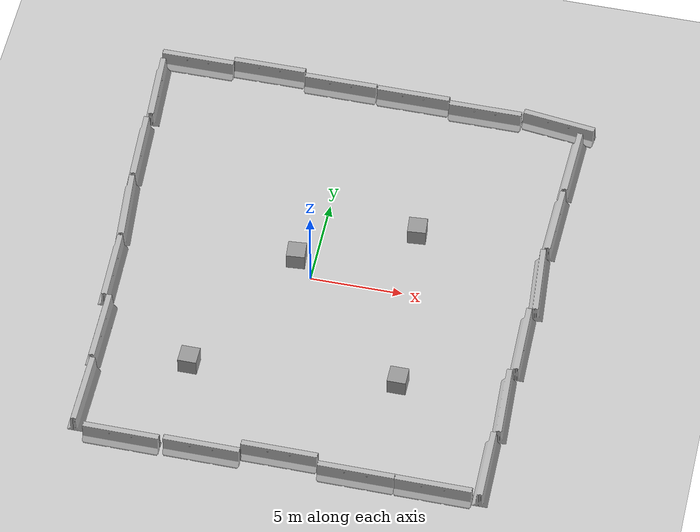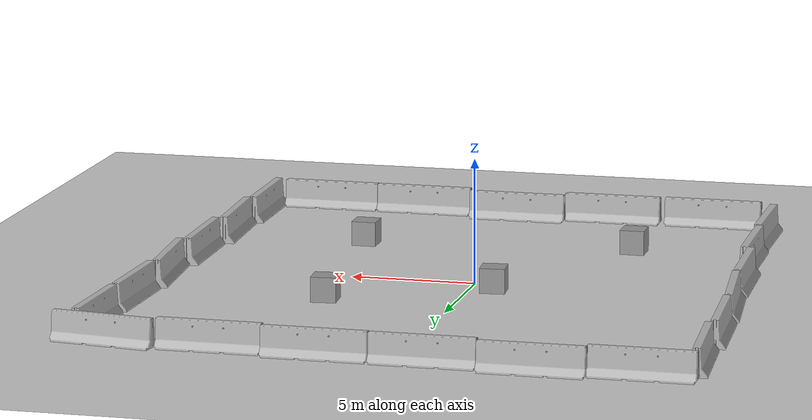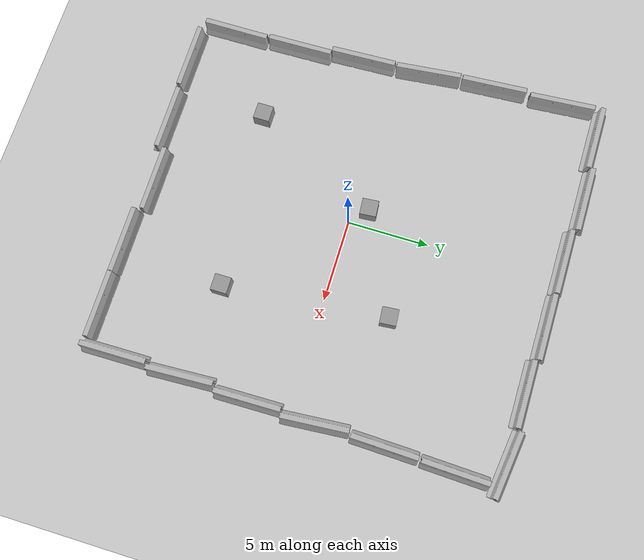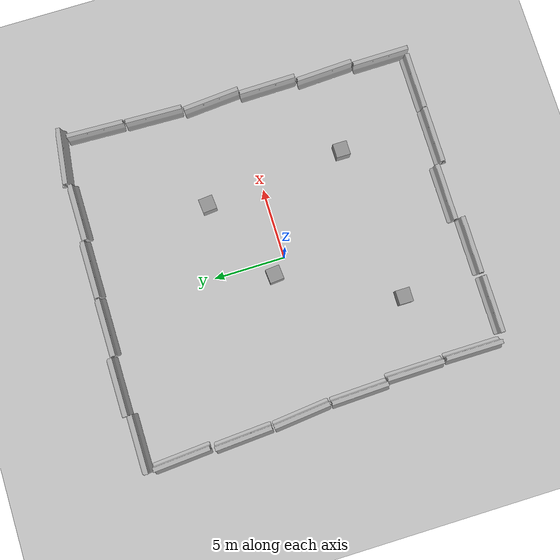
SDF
<sdf version="1.4">
 <world name="default">
  <light name="sun" type="directional">
   <pose>0 0 10 0 -0 0</pose>
   <diffuse>0.8 0.8 0.8 1</diffuse>
   <specular>0.2 0.2 0.2 1</specular>
   <attenuation>
    <range>1000</range>
    <constant>0.9</constant>
    <linear>0.01</linear>
    <quadratic>0.001</quadratic>
   </attenuation>
   <direction>-0.5 0.1 -0.9</direction>
  </light>
  <model name="ground_plane">
   <static>1</static>
   <link name="link">
    <collision name="collision">
     <geometry><plane><normal>0 0 1</normal><size>100 100</size></plane></geometry>
     <surface><friction><ode><mu>100</mu><mu2>50</mu2></ode></friction></surface>
    </collision>
    <visual name="visual">
     <cast_shadows>0</cast_shadows>
     <geometry><plane><normal>0 0 1</normal><size>100 100</size></plane></geometry>
     <material>
      <script><uri>file://media/materials/scripts/gazebo.material</uri><name>Gazebo/Grey</name></script>
     </material>
    </visual>
    <velocity_decay><linear>0</linear><angular>0</angular></velocity_decay>
   </link>
  </model>
  <physics type="ode">
   <max_step_size>0.001</max_step_size>
   <real_time_factor>1</real_time_factor>
   <real_time_update_rate>1000</real_time_update_rate>
   <gravity>0 0 -9.8</gravity>
  </physics>
  <scene><ambient>0.4 0.4 0.4 1</ambient><background>0.7 0.7 0.7 1</background><shadows>1</shadows></scene>
  <spherical_coordinates>
   <surface_model>EARTH_WGS84</surface_model>
   <latitude_deg>0</latitude_deg>
   <longitude_deg>0</longitude_deg>
   <elevation>0</elevation>
   <heading_deg>0</heading_deg>
  </spherical_coordinates>
  <model name="unit_box_1">
   <pose>5 4 0.5 0 -0 0.083754</pose>
   <link name="link">
    <inertial>
     <mass>1</mass>
     <inertia><ixx>1</ixx><ixy>0</ixy><ixz>0</ixz><iyy>1</iyy><iyz>0</iyz><izz>1</izz></inertia>
    </inertial>
    <collision name="collision"><geometry><box><size>1 1 1</size></box></geometry></collision>
    <visual name="visual">
     <geometry><box><size>1 1 1</size></box></geometry>
     <material>
      <script><uri>file://media/materials/scripts/gazebo.material</uri><name>Gazebo/Grey</name></script>
     </material>
    </visual>
    <velocity_decay><linear>0</linear><angular>0</angular></velocity_decay>
   </link>
   <static>0</static>
  </model>
  <model name="unit_box_2">
   <pose>-5 -7 0.5 0 -0 0</pose>
   <link name="link">
    <inertial>
     <mass>1</mass>
     <inertia><ixx>1</ixx><ixy>0</ixy><ixz>0</ixz><iyy>1</iyy><iyz>0</iyz><izz>1</izz></inertia>
    </inertial>
    <collision name="collision"><geometry><box><size>1 1 1</size></box></geometry></collision>
    <visual name="visual">
     <geometry><box><size>1 1 1</size></box></geometry>
     <material>
      <script><uri>file://media/materials/scripts/gazebo.material</uri><name>Gazebo/Grey</name></script>
     </material>
    </visual>
    <velocity_decay><linear>0</linear><angular>0</angular></velocity_decay>
   </link>
   <static>0</static>
  </model>
  <model name="unit_box_3">
   <pose>-1 1 0.5 0 -0 0.083754</pose>
   <link name="link">
    <inertial>
     <mass>1</mass>
     <inertia><ixx>1</ixx><ixy>0</ixy><ixz>0</ixz><iyy>1</iyy><iyz>0</iyz><izz>1</izz></inertia>
    </inertial>
    <collision name="collision"><geometry><box><size>1 1 1</size></box></geometry></collision>
    <visual name="visual">
     <geometry><box><size>1 1 1</size></box></geometry>
     <material>
      <script><uri>file://media/materials/scripts/gazebo.material</uri><name>Gazebo/Grey</name></script>
     </material>
    </visual>
    <velocity_decay><linear>0</linear><angular>0</angular></velocity_decay>
   </link>
   <static>0</static>
  </model>
  <model name="unit_box_4">
   <pose>6 -6 0.5 0 -0 0</pose>
   <link name="link">
    <inertial>
     <mass>1</mass>
     <inertia><ixx>1</ixx><ixy>0</ixy><ixz>0</ixz><iyy>1</iyy><iyz>0</iyz><izz>1</izz></inertia>
    </inertial>
    <collision name="collision"><geometry><box><size>1 1 1</size></box></geometry></collision>
    <visual name="visual">
     <geometry><box><size>1 1 1</size></box></geometry>
     <material>
      <script><uri>file://media/materials/scripts/gazebo.material</uri><name>Gazebo/Grey</name></script>
     </material>
    </visual>
    <velocity_decay><linear>0</linear><angular>0</angular></velocity_decay>
   </link>
   <static>0</static>
  </model>
  <model name="jersey_barrier">
   <static>1</static>
   <link name="link">
    <visual name="visual">
     <geometry><mesh><uri>model://jersey_barrier/meshes/jersey_barrier.dae</uri></mesh></geometry>
    </visual>
    <collision name="upright">
     <pose>0 0 0.5715 0 -0 0</pose>
     <geometry><box><size>4.06542 0.3063 1.143</size></box></geometry>
    </collision>
    <collision name="base">
     <pose>0 0 0.032258 0 -0 0</pose>
     <geometry><box><size>4.06542 0.8107 0.064516</size></box></geometry>
    </collision>
    <collision name="base2">
     <pose>0 0 0.1 0 -0 0</pose>
     <geometry><box><size>4.06542 0.65 0.1</size></box></geometry>
    </collision>
    <collision name="base3">
     <pose>0 0 0.2 0 -0 0</pose>
     <geometry><box><size>4.06542 0.5 0.1</size></box></geometry>
    </collision>
    <collision name="left-angle">
     <pose>0 -0.224 0.2401 0.9 -0 0</pose>
     <geometry><box><size>4.06542 0.5 0.064516</size></box></geometry>
    </collision>
    <collision name="right-angle">
     <pose>0 0.224 0.2401 -0.9 0 0</pose>
     <geometry><box><size>4.06542 0.5 0.064516</size></box></geometry>
    </collision>
    <velocity_decay><linear>0</linear><angular>0</angular></velocity_decay>
   </link>
   <pose>-7.26215 -12.5985 0 0 -0 0</pose>
  </model>
  <model name="jersey_barrier_0">
   <static>1</static>
   <link name="link">
    <visual name="visual">
     <geometry><mesh><uri>model://jersey_barrier/meshes/jersey_barrier.dae</uri></mesh></geometry>
    </visual>
    <collision name="upright">
     <pose>0 0 0.5715 0 -0 0</pose>
     <geometry><box><size>4.06542 0.3063 1.143</size></box></geometry>
    </collision>
    <collision name="base">
     <pose>0 0 0.032258 0 -0 0</pose>
     <geometry><box><size>4.06542 0.8107 0.064516</size></box></geometry>
    </collision>
    <collision name="base2">
     <pose>0 0 0.1 0 -0 0</pose>
     <geometry><box><size>4.06542 0.65 0.1</size></box></geometry>
    </collision>
    <collision name="base3">
     <pose>0 0 0.2 0 -0 0</pose>
     <geometry><box><size>4.06542 0.5 0.1</size></box></geometry>
    </collision>
    <collision name="left-angle">
     <pose>0 -0.224 0.2401 0.9 -0 0</pose>
     <geometry><box><size>4.06542 0.5 0.064516</size></box></geometry>
    </collision>
    <collision name="right-angle">
     <pose>0 0.224 0.2401 -0.9 0 0</pose>
     <geometry><box><size>4.06542 0.5 0.064516</size></box></geometry>
    </collision>
    <velocity_decay><linear>0</linear><angular>0</angular></velocity_decay>
   </link>
   <pose>-3 -12.5184 0 0 -0 0</pose>
  </model>
  <model name="jersey_barrier_1">
   <static>1</static>
   <link name="link">
    <visual name="visual">
     <geometry><mesh><uri>model://jersey_barrier/meshes/jersey_barrier.dae</uri></mesh></geometry>
    </visual>
    <collision name="upright">
     <pose>0 0 0.5715 0 -0 0</pose>
     <geometry><box><size>4.06542 0.3063 1.143</size></box></geometry>
    </collision>
    <collision name="base">
     <pose>0 0 0.032258 0 -0 0</pose>
     <geometry><box><size>4.06542 0.8107 0.064516</size></box></geometry>
    </collision>
    <collision name="base2">
     <pose>0 0 0.1 0 -0 0</pose>
     <geometry><box><size>4.06542 0.65 0.1</size></box></geometry>
    </collision>
    <collision name="base3">
     <pose>0 0 0.2 0 -0 0</pose>
     <geometry><box><size>4.06542 0.5 0.1</size></box></geometry>
    </collision>
    <collision name="left-angle">
     <pose>0 -0.224 0.2401 0.9 -0 0</pose>
     <geometry><box><size>4.06542 0.5 0.064516</size></box></geometry>
    </collision>
    <collision name="right-angle">
     <pose>0 0.224 0.2401 -0.9 0 0</pose>
     <geometry><box><size>4.06542 0.5 0.064516</size></box></geometry>
    </collision>
    <velocity_decay><linear>0</linear><angular>0</angular></velocity_decay>
   </link>
   <pose>1 -12 0 0 -0 0</pose>
  </model>
  <model name="jersey_barrier_2">
   <static>1</static>
   <link name="link">
    <visual name="visual">
     <geometry><mesh><uri>model://jersey_barrier/meshes/jersey_barrier.dae</uri></mesh></geometry>
    </visual>
    <collision name="upright">
     <pose>0 0 0.5715 0 -0 0</pose>
     <geometry><box><size>4.06542 0.3063 1.143</size></box></geometry>
    </collision>
    <collision name="base">
     <pose>0 0 0.032258 0 -0 0</pose>
     <geometry><box><size>4.06542 0.8107 0.064516</size></box></geometry>
    </collision>
    <collision name="base2">
     <pose>0 0 0.1 0 -0 0</pose>
     <geometry><box><size>4.06542 0.65 0.1</size></box></geometry>
    </collision>
    <collision name="base3">
     <pose>0 0 0.2 0 -0 0</pose>
     <geometry><box><size>4.06542 0.5 0.1</size></box></geometry>
    </collision>
    <collision name="left-angle">
     <pose>0 -0.224 0.2401 0.9 -0 0</pose>
     <geometry><box><size>4.06542 0.5 0.064516</size></box></geometry>
    </collision>
    <collision name="right-angle">
     <pose>0 0.224 0.2401 -0.9 0 0</pose>
     <geometry><box><size>4.06542 0.5 0.064516</size></box></geometry>
    </collision>
    <velocity_decay><linear>0</linear><angular>0</angular></velocity_decay>
   </link>
   <pose>5.13642 -12.451 0 0 -0 0</pose>
  </model>
  <model name="jersey_barrier_3">
   <static>1</static>
   <link name="link">
    <visual name="visual">
     <geometry><mesh><uri>model://jersey_barrier/meshes/jersey_barrier.dae</uri></mesh></geometry>
    </visual>
    <collision name="upright">
     <pose>0 0 0.5715 0 -0 0</pose>
     <geometry><box><size>4.06542 0.3063 1.143</size></box></geometry>
    </collision>
    <collision name="base">
     <pose>0 0 0.032258 0 -0 0</pose>
     <geometry><box><size>4.06542 0.8107 0.064516</size></box></geometry>
    </collision>
    <collision name="base2">
     <pose>0 0 0.1 0 -0 0</pose>
     <geometry><box><size>4.06542 0.65 0.1</size></box></geometry>
    </collision>
    <collision name="base3">
     <pose>0 0 0.2 0 -0 0</pose>
     <geometry><box><size>4.06542 0.5 0.1</size></box></geometry>
    </collision>
    <collision name="left-angle">
     <pose>0 -0.224 0.2401 0.9 -0 0</pose>
     <geometry><box><size>4.06542 0.5 0.064516</size></box></geometry>
    </collision>
    <collision name="right-angle">
     <pose>0 0.224 0.2401 -0.9 0 0</pose>
     <geometry><box><size>4.06542 0.5 0.064516</size></box></geometry>
    </collision>
    <velocity_decay><linear>0</linear><angular>0</angular></velocity_decay>
   </link>
   <pose>9.19104 -12.4604 0 0 -0 0</pose>
  </model>
  <model name="jersey_barrier_4">
   <static>1</static>
   <link name="link">
    <visual name="visual">
     <geometry><mesh><uri>model://jersey_barrier/meshes/jersey_barrier.dae</uri></mesh></geometry>
    </visual>
    <collision name="upright">
     <pose>0 0 0.5715 0 -0 0</pose>
     <geometry><box><size>4.06542 0.3063 1.143</size></box></geometry>
    </collision>
    <collision name="base">
     <pose>0 0 0.032258 0 -0 0</pose>
     <geometry><box><size>4.06542 0.8107 0.064516</size></box></geometry>
    </collision>
    <collision name="base2">
     <pose>0 0 0.1 0 -0 0</pose>
     <geometry><box><size>4.06542 0.65 0.1</size></box></geometry>
    </collision>
    <collision name="base3">
     <pose>0 0 0.2 0 -0 0</pose>
     <geometry><box><size>4.06542 0.5 0.1</size></box></geometry>
    </collision>
    <collision name="left-angle">
     <pose>0 -0.224 0.2401 0.9 -0 0</pose>
     <geometry><box><size>4.06542 0.5 0.064516</size></box></geometry>
    </collision>
    <collision name="right-angle">
     <pose>0 0.224 0.2401 -0.9 0 0</pose>
     <geometry><box><size>4.06542 0.5 0.064516</size></box></geometry>
    </collision>
    <velocity_decay><linear>0</linear><angular>0</angular></velocity_decay>
   </link>
   <pose>11.6163 -10.6377 0 0 -0 1.58161</pose>
  </model>
  <model name="jersey_barrier_5">
   <static>1</static>
   <link name="link">
    <visual name="visual">
     <geometry><mesh><uri>model://jersey_barrier/meshes/jersey_barrier.dae</uri></mesh></geometry>
    </visual>
    <collision name="upright">
     <pose>0 0 0.5715 0 -0 0</pose>
     <geometry><box><size>4.06542 0.3063 1.143</size></box></geometry>
    </collision>
    <collision name="base">
     <pose>0 0 0.032258 0 -0 0</pose>
     <geometry><box><size>4.06542 0.8107 0.064516</size></box></geometry>
    </collision>
    <collision name="base2">
     <pose>0 0 0.1 0 -0 0</pose>
     <geometry><box><size>4.06542 0.65 0.1</size></box></geometry>
    </collision>
    <collision name="base3">
     <pose>0 0 0.2 0 -0 0</pose>
     <geometry><box><size>4.06542 0.5 0.1</size></box></geometry>
    </collision>
    <collision name="left-angle">
     <pose>0 -0.224 0.2401 0.9 -0 0</pose>
     <geometry><box><size>4.06542 0.5 0.064516</size></box></geometry>
    </collision>
    <collision name="right-angle">
     <pose>0 0.224 0.2401 -0.9 0 0</pose>
     <geometry><box><size>4.06542 0.5 0.064516</size></box></geometry>
    </collision>
    <velocity_decay><linear>0</linear><angular>0</angular></velocity_decay>
   </link>
   <pose>-9.25889 13.0001 0 0 -0 0</pose>
  </model>
  <model name="jersey_barrier_6">
   <static>1</static>
   <link name="link">
    <visual name="visual">
     <geometry><mesh><uri>model://jersey_barrier/meshes/jersey_barrier.dae</uri></mesh></geometry>
    </visual>
    <collision name="upright">
     <pose>0 0 0.5715 0 -0 0</pose>
     <geometry><box><size>4.06542 0.3063 1.143</size></box></geometry>
    </collision>
    <collision name="base">
     <pose>0 0 0.032258 0 -0 0</pose>
     <geometry><box><size>4.06542 0.8107 0.064516</size></box></geometry>
    </collision>
    <collision name="base2">
     <pose>0 0 0.1 0 -0 0</pose>
     <geometry><box><size>4.06542 0.65 0.1</size></box></geometry>
    </collision>
    <collision name="base3">
     <pose>0 0 0.2 0 -0 0</pose>
     <geometry><box><size>4.06542 0.5 0.1</size></box></geometry>
    </collision>
    <collision name="left-angle">
     <pose>0 -0.224 0.2401 0.9 -0 0</pose>
     <geometry><box><size>4.06542 0.5 0.064516</size></box></geometry>
    </collision>
    <collision name="right-angle">
     <pose>0 0.224 0.2401 -0.9 0 0</pose>
     <geometry><box><size>4.06542 0.5 0.064516</size></box></geometry>
    </collision>
    <velocity_decay><linear>0</linear><angular>0</angular></velocity_decay>
   </link>
   <pose>-5.24766 13.2823 0 0 -0 0</pose>
  </model>
  <model name="jersey_barrier_7">
   <static>1</static>
   <link name="link">
    <visual name="visual">
     <geometry><mesh><uri>model://jersey_barrier/meshes/jersey_barrier.dae</uri></mesh></geometry>
    </visual>
    <collision name="upright">
     <pose>0 0 0.5715 0 -0 0</pose>
     <geometry><box><size>4.06542 0.3063 1.143</size></box></geometry>
    </collision>
    <collision name="base">
     <pose>0 0 0.032258 0 -0 0</pose>
     <geometry><box><size>4.06542 0.8107 0.064516</size></box></geometry>
    </collision>
    <collision name="base2">
     <pose>0 0 0.1 0 -0 0</pose>
     <geometry><box><size>4.06542 0.65 0.1</size></box></geometry>
    </collision>
    <collision name="base3">
     <pose>0 0 0.2 0 -0 0</pose>
     <geometry><box><size>4.06542 0.5 0.1</size></box></geometry>
    </collision>
    <collision name="left-angle">
     <pose>0 -0.224 0.2401 0.9 -0 0</pose>
     <geometry><box><size>4.06542 0.5 0.064516</size></box></geometry>
    </collision>
    <collision name="right-angle">
     <pose>0 0.224 0.2401 -0.9 0 0</pose>
     <geometry><box><size>4.06542 0.5 0.064516</size></box></geometry>
    </collision>
    <velocity_decay><linear>0</linear><angular>0</angular></velocity_decay>
   </link>
   <pose>-1.1439 12.9956 0 0 -0 0</pose>
  </model>
  <model name="jersey_barrier_8">
   <static>1</static>
   <link name="link">
    <visual name="visual">
     <geometry><mesh><uri>model://jersey_barrier/meshes/jersey_barrier.dae</uri></mesh></geometry>
    </visual>
    <collision name="upright">
     <pose>0 0 0.5715 0 -0 0</pose>
     <geometry><box><size>4.06542 0.3063 1.143</size></box></geometry>
    </collision>
    <collision name="base">
     <pose>0 0 0.032258 0 -0 0</pose>
     <geometry><box><size>4.06542 0.8107 0.064516</size></box></geometry>
    </collision>
    <collision name="base2">
     <pose>0 0 0.1 0 -0 0</pose>
     <geometry><box><size>4.06542 0.65 0.1</size></box></geometry>
    </collision>
    <collision name="base3">
     <pose>0 0 0.2 0 -0 0</pose>
     <geometry><box><size>4.06542 0.5 0.1</size></box></geometry>
    </collision>
    <collision name="left-angle">
     <pose>0 -0.224 0.2401 0.9 -0 0</pose>
     <geometry><box><size>4.06542 0.5 0.064516</size></box></geometry>
    </collision>
    <collision name="right-angle">
     <pose>0 0.224 0.2401 -0.9 0 0</pose>
     <geometry><box><size>4.06542 0.5 0.064516</size></box></geometry>
    </collision>
    <velocity_decay><linear>0</linear><angular>0</angular></velocity_decay>
   </link>
   <pose>2.95316 12.9508 0 0 -0 0</pose>
  </model>
  <model name="jersey_barrier_9">
   <static>1</static>
   <link name="link">
    <visual name="visual">
     <geometry><mesh><uri>model://jersey_barrier/meshes/jersey_barrier.dae</uri></mesh></geometry>
    </visual>
    <collision name="upright">
     <pose>0 0 0.5715 0 -0 0</pose>
     <geometry><box><size>4.06542 0.3063 1.143</size></box></geometry>
    </collision>
    <collision name="base">
     <pose>0 0 0.032258 0 -0 0</pose>
     <geometry><box><size>4.06542 0.8107 0.064516</size></box></geometry>
    </collision>
    <collision name="base2">
     <pose>0 0 0.1 0 -0 0</pose>
     <geometry><box><size>4.06542 0.65 0.1</size></box></geometry>
    </collision>
    <collision name="base3">
     <pose>0 0 0.2 0 -0 0</pose>
     <geometry><box><size>4.06542 0.5 0.1</size></box></geometry>
    </collision>
    <collision name="left-angle">
     <pose>0 -0.224 0.2401 0.9 -0 0</pose>
     <geometry><box><size>4.06542 0.5 0.064516</size></box></geometry>
    </collision>
    <collision name="right-angle">
     <pose>0 0.224 0.2401 -0.9 0 0</pose>
     <geometry><box><size>4.06542 0.5 0.064516</size></box></geometry>
    </collision>
    <velocity_decay><linear>0</linear><angular>0</angular></velocity_decay>
   </link>
   <pose>7.0396 12.7183 0 0 -0 0</pose>
  </model>
  <model name="jersey_barrier_10">
   <static>1</static>
   <link name="link">
    <visual name="visual">
     <geometry><mesh><uri>model://jersey_barrier/meshes/jersey_barrier.dae</uri></mesh></geometry>
    </visual>
    <collision name="upright">
     <pose>0 0 0.5715 0 -0 0</pose>
     <geometry><box><size>4.06542 0.3063 1.143</size></box></geometry>
    </collision>
    <collision name="base">
     <pose>0 0 0.032258 0 -0 0</pose>
     <geometry><box><size>4.06542 0.8107 0.064516</size></box></geometry>
    </collision>
    <collision name="base2">
     <pose>0 0 0.1 0 -0 0</pose>
     <geometry><box><size>4.06542 0.65 0.1</size></box></geometry>
    </collision>
    <collision name="base3">
     <pose>0 0 0.2 0 -0 0</pose>
     <geometry><box><size>4.06542 0.5 0.1</size></box></geometry>
    </collision>
    <collision name="left-angle">
     <pose>0 -0.224 0.2401 0.9 -0 0</pose>
     <geometry><box><size>4.06542 0.5 0.064516</size></box></geometry>
    </collision>
    <collision name="right-angle">
     <pose>0 0.224 0.2401 -0.9 0 0</pose>
     <geometry><box><size>4.06542 0.5 0.064516</size></box></geometry>
    </collision>
    <velocity_decay><linear>0</linear><angular>0</angular></velocity_decay>
   </link>
   <pose>11.167 12.7238 0 0 0 -0.129577</pose>
  </model>
  <model name="jersey_barrier_11">
   <static>1</static>
   <link name="link">
    <visual name="visual">
     <geometry><mesh><uri>model://jersey_barrier/meshes/jersey_barrier.dae</uri></mesh></geometry>
    </visual>
    <collision name="upright">
     <pose>0 0 0.5715 0 -0 0</pose>
     <geometry><box><size>4.06542 0.3063 1.143</size></box></geometry>
    </collision>
    <collision name="base">
     <pose>0 0 0.032258 0 -0 0</pose>
     <geometry><box><size>4.06542 0.8107 0.064516</size></box></geometry>
    </collision>
    <collision name="base2">
     <pose>0 0 0.1 0 -0 0</pose>
     <geometry><box><size>4.06542 0.65 0.1</size></box></geometry>
    </collision>
    <collision name="base3">
     <pose>0 0 0.2 0 -0 0</pose>
     <geometry><box><size>4.06542 0.5 0.1</size></box></geometry>
    </collision>
    <collision name="left-angle">
     <pose>0 -0.224 0.2401 0.9 -0 0</pose>
     <geometry><box><size>4.06542 0.5 0.064516</size></box></geometry>
    </collision>
    <collision name="right-angle">
     <pose>0 0.224 0.2401 -0.9 0 0</pose>
     <geometry><box><size>4.06542 0.5 0.064516</size></box></geometry>
    </collision>
    <velocity_decay><linear>0</linear><angular>0</angular></velocity_decay>
   </link>
   <pose>12.194 5.8304 0 0 -0 1.54369</pose>
  </model>
  <model name="jersey_barrier_12">
   <static>1</static>
   <link name="link">
    <visual name="visual">
     <geometry><mesh><uri>model://jersey_barrier/meshes/jersey_barrier.dae</uri></mesh></geometry>
    </visual>
    <collision name="upright">
     <pose>0 0 0.5715 0 -0 0</pose>
     <geometry><box><size>4.06542 0.3063 1.143</size></box></geometry>
    </collision>
    <collision name="base">
     <pose>0 0 0.032258 0 -0 0</pose>
     <geometry><box><size>4.06542 0.8107 0.064516</size></box></geometry>
    </collision>
    <collision name="base2">
     <pose>0 0 0.1 0 -0 0</pose>
     <geometry><box><size>4.06542 0.65 0.1</size></box></geometry>
    </collision>
    <collision name="base3">
     <pose>0 0 0.2 0 -0 0</pose>
     <geometry><box><size>4.06542 0.5 0.1</size></box></geometry>
    </collision>
    <collision name="left-angle">
     <pose>0 -0.224 0.2401 0.9 -0 0</pose>
     <geometry><box><size>4.06542 0.5 0.064516</size></box></geometry>
    </collision>
    <collision name="right-angle">
     <pose>0 0.224 0.2401 -0.9 0 0</pose>
     <geometry><box><size>4.06542 0.5 0.064516</size></box></geometry>
    </collision>
    <velocity_decay><linear>0</linear><angular>0</angular></velocity_decay>
   </link>
   <pose>12.0907 1.67887 0 0 -0 1.64825</pose>
  </model>
  <model name="jersey_barrier_13">
   <static>1</static>
   <link name="link">
    <visual name="visual">
     <geometry><mesh><uri>model://jersey_barrier/meshes/jersey_barrier.dae</uri></mesh></geometry>
    </visual>
    <collision name="upright">
     <pose>0 0 0.5715 0 -0 0</pose>
     <geometry><box><size>4.06542 0.3063 1.143</size></box></geometry>
    </collision>
    <collision name="base">
     <pose>0 0 0.032258 0 -0 0</pose>
     <geometry><box><size>4.06542 0.8107 0.064516</size></box></geometry>
    </collision>
    <collision name="base2">
     <pose>0 0 0.1 0 -0 0</pose>
     <geometry><box><size>4.06542 0.65 0.1</size></box></geometry>
    </collision>
    <collision name="base3">
     <pose>0 0 0.2 0 -0 0</pose>
     <geometry><box><size>4.06542 0.5 0.1</size></box></geometry>
    </collision>
    <collision name="left-angle">
     <pose>0 -0.224 0.2401 0.9 -0 0</pose>
     <geometry><box><size>4.06542 0.5 0.064516</size></box></geometry>
    </collision>
    <collision name="right-angle">
     <pose>0 0.224 0.2401 -0.9 0 0</pose>
     <geometry><box><size>4.06542 0.5 0.064516</size></box></geometry>
    </collision>
    <velocity_decay><linear>0</linear><angular>0</angular></velocity_decay>
   </link>
   <pose>11.9521 -2.38624 0 0 -0 1.58545</pose>
  </model>
  <model name="jersey_barrier_14">
   <static>1</static>
   <link name="link">
    <visual name="visual">
     <geometry><mesh><uri>model://jersey_barrier/meshes/jersey_barrier.dae</uri></mesh></geometry>
    </visual>
    <collision name="upright">
     <pose>0 0 0.5715 0 -0 0</pose>
     <geometry><box><size>4.06542 0.3063 1.143</size></box></geometry>
    </collision>
    <collision name="base">
     <pose>0 0 0.032258 0 -0 0</pose>
     <geometry><box><size>4.06542 0.8107 0.064516</size></box></geometry>
    </collision>
    <collision name="base2">
     <pose>0 0 0.1 0 -0 0</pose>
     <geometry><box><size>4.06542 0.65 0.1</size></box></geometry>
    </collision>
    <collision name="base3">
     <pose>0 0 0.2 0 -0 0</pose>
     <geometry><box><size>4.06542 0.5 0.1</size></box></geometry>
    </collision>
    <collision name="left-angle">
     <pose>0 -0.224 0.2401 0.9 -0 0</pose>
     <geometry><box><size>4.06542 0.5 0.064516</size></box></geometry>
    </collision>
    <collision name="right-angle">
     <pose>0 0.224 0.2401 -0.9 0 0</pose>
     <geometry><box><size>4.06542 0.5 0.064516</size></box></geometry>
    </collision>
    <velocity_decay><linear>0</linear><angular>0</angular></velocity_decay>
   </link>
   <pose>11.7484 -6.5369 0 0 -0 1.61742</pose>
  </model>
  <model name="jersey_barrier_15">
   <static>1</static>
   <link name="link">
    <visual name="visual">
     <geometry><mesh><uri>model://jersey_barrier/meshes/jersey_barrier.dae</uri></mesh></geometry>
    </visual>
    <collision name="upright">
     <pose>0 0 0.5715 0 -0 0</pose>
     <geometry><box><size>4.06542 0.3063 1.143</size></box></geometry>
    </collision>
    <collision name="base">
     <pose>0 0 0.032258 0 -0 0</pose>
     <geometry><box><size>4.06542 0.8107 0.064516</size></box></geometry>
    </collision>
    <collision name="base2">
     <pose>0 0 0.1 0 -0 0</pose>
     <geometry><box><size>4.06542 0.65 0.1</size></box></geometry>
    </collision>
    <collision name="base3">
     <pose>0 0 0.2 0 -0 0</pose>
     <geometry><box><size>4.06542 0.5 0.1</size></box></geometry>
    </collision>
    <collision name="left-angle">
     <pose>0 -0.224 0.2401 0.9 -0 0</pose>
     <geometry><box><size>4.06542 0.5 0.064516</size></box></geometry>
    </collision>
    <collision name="right-angle">
     <pose>0 0.224 0.2401 -0.9 0 0</pose>
     <geometry><box><size>4.06542 0.5 0.064516</size></box></geometry>
    </collision>
    <velocity_decay><linear>0</linear><angular>0</angular></velocity_decay>
   </link>
   <pose>-10.907 6.17584 0 0 -0 1.63254</pose>
  </model>
  <model name="jersey_barrier_16">
   <static>1</static>
   <link name="link">
    <visual name="visual">
     <geometry><mesh><uri>model://jersey_barrier/meshes/jersey_barrier.dae</uri></mesh></geometry>
    </visual>
    <collision name="upright">
     <pose>0 0 0.5715 0 -0 0</pose>
     <geometry><box><size>4.06542 0.3063 1.143</size></box></geometry>
    </collision>
    <collision name="base">
     <pose>0 0 0.032258 0 -0 0</pose>
     <geometry><box><size>4.06542 0.8107 0.064516</size></box></geometry>
    </collision>
    <collision name="base2">
     <pose>0 0 0.1 0 -0 0</pose>
     <geometry><box><size>4.06542 0.65 0.1</size></box></geometry>
    </collision>
    <collision name="base3">
     <pose>0 0 0.2 0 -0 0</pose>
     <geometry><box><size>4.06542 0.5 0.1</size></box></geometry>
    </collision>
    <collision name="left-angle">
     <pose>0 -0.224 0.2401 0.9 -0 0</pose>
     <geometry><box><size>4.06542 0.5 0.064516</size></box></geometry>
    </collision>
    <collision name="right-angle">
     <pose>0 0.224 0.2401 -0.9 0 0</pose>
     <geometry><box><size>4.06542 0.5 0.064516</size></box></geometry>
    </collision>
    <velocity_decay><linear>0</linear><angular>0</angular></velocity_decay>
   </link>
   <pose>-10.6126 2.01572 0 0 -0 1.67324</pose>
  </model>
  <model name="jersey_barrier_17">
   <static>1</static>
   <link name="link">
    <visual name="visual">
     <geometry><mesh><uri>model://jersey_barrier/meshes/jersey_barrier.dae</uri></mesh></geometry>
    </visual>
    <collision name="upright">
     <pose>0 0 0.5715 0 -0 0</pose>
     <geometry><box><size>4.06542 0.3063 1.143</size></box></geometry>
    </collision>
    <collision name="base">
     <pose>0 0 0.032258 0 -0 0</pose>
     <geometry><box><size>4.06542 0.8107 0.064516</size></box></geometry>
    </collision>
    <collision name="base2">
     <pose>0 0 0.1 0 -0 0</pose>
     <geometry><box><size>4.06542 0.65 0.1</size></box></geometry>
    </collision>
    <collision name="base3">
     <pose>0 0 0.2 0 -0 0</pose>
     <geometry><box><size>4.06542 0.5 0.1</size></box></geometry>
    </collision>
    <collision name="left-angle">
     <pose>0 -0.224 0.2401 0.9 -0 0</pose>
     <geometry><box><size>4.06542 0.5 0.064516</size></box></geometry>
    </collision>
    <collision name="right-angle">
     <pose>0 0.224 0.2401 -0.9 0 0</pose>
     <geometry><box><size>4.06542 0.5 0.064516</size></box></geometry>
    </collision>
    <velocity_decay><linear>0</linear><angular>0</angular></velocity_decay>
   </link>
   <pose>-10.3644 -2.14271 0 0 -0 1.60702</pose>
  </model>
  <model name="jersey_barrier_18">
   <static>1</static>
   <link name="link">
    <visual name="visual">
     <geometry><mesh><uri>model://jersey_barrier/meshes/jersey_barrier.dae</uri></mesh></geometry>
    </visual>
    <collision name="upright">
     <pose>0 0 0.5715 0 -0 0</pose>
     <geometry><box><size>4.06542 0.3063 1.143</size></box></geometry>
    </collision>
    <collision name="base">
     <pose>0 0 0.032258 0 -0 0</pose>
     <geometry><box><size>4.06542 0.8107 0.064516</size></box></geometry>
    </collision>
    <collision name="base2">
     <pose>0 0 0.1 0 -0 0</pose>
     <geometry><box><size>4.06542 0.65 0.1</size></box></geometry>
    </collision>
    <collision name="base3">
     <pose>0 0 0.2 0 -0 0</pose>
     <geometry><box><size>4.06542 0.5 0.1</size></box></geometry>
    </collision>
    <collision name="left-angle">
     <pose>0 -0.224 0.2401 0.9 -0 0</pose>
     <geometry><box><size>4.06542 0.5 0.064516</size></box></geometry>
    </collision>
    <collision name="right-angle">
     <pose>0 0.224 0.2401 -0.9 0 0</pose>
     <geometry><box><size>4.06542 0.5 0.064516</size></box></geometry>
    </collision>
    <velocity_decay><linear>0</linear><angular>0</angular></velocity_decay>
   </link>
   <pose>-9.98265 -6.18571 0 0 -0 1.58701</pose>
  </model>
  <model name="jersey_barrier_19">
   <static>1</static>
   <link name="link">
    <visual name="visual">
     <geometry><mesh><uri>model://jersey_barrier/meshes/jersey_barrier.dae</uri></mesh></geometry>
    </visual>
    <collision name="upright">
     <pose>0 0 0.5715 0 -0 0</pose>
     <geometry><box><size>4.06542 0.3063 1.143</size></box></geometry>
    </collision>
    <collision name="base">
     <pose>0 0 0.032258 0 -0 0</pose>
     <geometry><box><size>4.06542 0.8107 0.064516</size></box></geometry>
    </collision>
    <collision name="base2">
     <pose>0 0 0.1 0 -0 0</pose>
     <geometry><box><size>4.06542 0.65 0.1</size></box></geometry>
    </collision>
    <collision name="base3">
     <pose>0 0 0.2 0 -0 0</pose>
     <geometry><box><size>4.06542 0.5 0.1</size></box></geometry>
    </collision>
    <collision name="left-angle">
     <pose>0 -0.224 0.2401 0.9 -0 0</pose>
     <geometry><box><size>4.06542 0.5 0.064516</size></box></geometry>
    </collision>
    <collision name="right-angle">
     <pose>0 0.224 0.2401 -0.9 0 0</pose>
     <geometry><box><size>4.06542 0.5 0.064516</size></box></geometry>
    </collision>
    <velocity_decay><linear>0</linear><angular>0</angular></velocity_decay>
   </link>
   <pose>-9.85449 -10.3717 0 0 -0 1.57336</pose>
  </model>
  <model name="jersey_barrier_20">
   <static>1</static>
   <link name="link">
    <visual name="visual">
     <geometry><mesh><uri>model://jersey_barrier/meshes/jersey_barrier.dae</uri></mesh></geometry>
    </visual>
    <collision name="upright">
     <pose>0 0 0.5715 0 -0 0</pose>
     <geometry><box><size>4.06542 0.3063 1.143</size></box></geometry>
    </collision>
    <collision name="base">
     <pose>0 0 0.032258 0 -0 0</pose>
     <geometry><box><size>4.06542 0.8107 0.064516</size></box></geometry>
    </collision>
    <collision name="base2">
     <pose>0 0 0.1 0 -0 0</pose>
     <geometry><box><size>4.06542 0.65 0.1</size></box></geometry>
    </collision>
    <collision name="base3">
     <pose>0 0 0.2 0 -0 0</pose>
     <geometry><box><size>4.06542 0.5 0.1</size></box></geometry>
    </collision>
    <collision name="left-angle">
     <pose>0 -0.224 0.2401 0.9 -0 0</pose>
     <geometry><box><size>4.06542 0.5 0.064516</size></box></geometry>
    </collision>
    <collision name="right-angle">
     <pose>0 0.224 0.2401 -0.9 0 0</pose>
     <geometry><box><size>4.06542 0.5 0.064516</size></box></geometry>
    </collision>
    <velocity_decay><linear>0</linear><angular>0</angular></velocity_decay>
   </link>
   <pose>12.3728 10.0187 0 0 -0 1.53674</pose>
  </model>
  <model name="jersey_barrier_21">
   <static>1</static>
   <link name="link">
    <visual name="visual">
     <geometry><mesh><uri>model://jersey_barrier/meshes/jersey_barrier.dae</uri></mesh></geometry>
    </visual>
    <collision name="upright">
     <pose>0 0 0.5715 0 -0 0</pose>
     <geometry><box><size>4.06542 0.3063 1.143</size></box></geometry>
    </collision>
    <collision name="base">
     <pose>0 0 0.032258 0 -0 0</pose>
     <geometry><box><size>4.06542 0.8107 0.064516</size></box></geometry>
    </collision>
    <collision name="base2">
     <pose>0 0 0.1 0 -0 0</pose>
     <geometry><box><size>4.06542 0.65 0.1</size></box></geometry>
    </collision>
    <collision name="base3">
     <pose>0 0 0.2 0 -0 0</pose>
     <geometry><box><size>4.06542 0.5 0.1</size></box></geometry>
    </collision>
    <collision name="left-angle">
     <pose>0 -0.224 0.2401 0.9 -0 0</pose>
     <geometry><box><size>4.06542 0.5 0.064516</size></box></geometry>
    </collision>
    <collision name="right-angle">
     <pose>0 0.224 0.2401 -0.9 0 0</pose>
     <geometry><box><size>4.06542 0.5 0.064516</size></box></geometry>
    </collision>
    <velocity_decay><linear>0</linear><angular>0</angular></velocity_decay>
   </link>
   <pose>-10.9991 10.488 0 0 -0 1.64124</pose>
  </model>
 </world>
</sdf>
